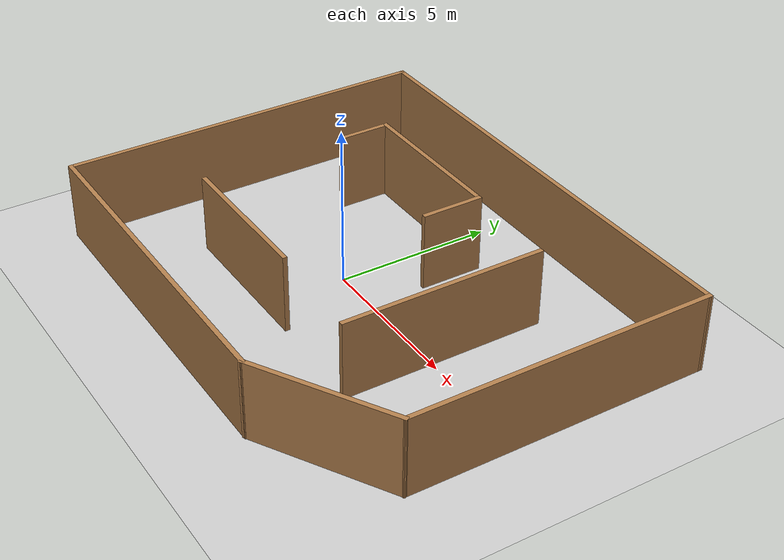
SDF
<sdf version="1.7">
 <world name="default">
  <light name="sun" type="directional">
   <pose>0 0 10 0 -0 0</pose>
   <diffuse>0.8 0.8 0.8 1</diffuse>
   <specular>0.2 0.2 0.2 1</specular>
   <attenuation>
    <range>1000</range>
    <constant>0.9</constant>
    <linear>0.01</linear>
    <quadratic>0.001</quadratic>
   </attenuation>
   <direction>-0.5 0.1 -0.9</direction>
   <spot><inner_angle>0</inner_angle><outer_angle>0</outer_angle><falloff>0</falloff></spot>
  </light>
  <model name="ground_plane">
   <static>1</static>
   <link name="link">
    <collision name="collision">
     <geometry><plane><normal>0 0 1</normal><size>100 100</size></plane></geometry>
     <surface>
      <contact><collide_bitmask>65535</collide_bitmask></contact>
      <friction><ode><mu>100</mu><mu2>50</mu2></ode></friction>
     </surface>
    </collision>
    <visual name="visual">
     <cast_shadows>0</cast_shadows>
     <geometry><plane><normal>0 0 1</normal><size>100 100</size></plane></geometry>
     <material>
      <script><uri>file://media/materials/scripts/gazebo.material</uri><name>Gazebo/Grey</name></script>
     </material>
    </visual>
   </link>
  </model>
  <gravity>0 0 -9.8</gravity>
  <magnetic_field>6e-06 2.3e-05 -4.2e-05</magnetic_field>
  <atmosphere type="adiabatic"/>
  <physics type="ode">
   <max_step_size>0.001</max_step_size>
   <real_time_factor>1</real_time_factor>
   <real_time_update_rate>1000</real_time_update_rate>
  </physics>
  <scene><ambient>0.4 0.4 0.4 1</ambient><background>0.7 0.7 0.7 1</background><shadows>1</shadows></scene>
  <spherical_coordinates>
   <surface_model>EARTH_WGS84</surface_model>
   <latitude_deg>0</latitude_deg>
   <longitude_deg>0</longitude_deg>
   <elevation>0</elevation>
   <heading_deg>0</heading_deg>
  </spherical_coordinates>
  <model name="simple_map">
   <pose>1.2124 0.1647 0 0 -0 0</pose>
   <link name="Wall_10">
    <collision name="Wall_10_Collision">
     <geometry><box><size>1.75 0.15 2.5</size></box></geometry>
     <pose>0 0 1.25 0 -0 0</pose>
    </collision>
    <visual name="Wall_10_Visual">
     <pose>0 0 1.25 0 -0 0</pose>
     <geometry><box><size>1.75 0.15 2.5</size></box></geometry>
     <material>
      <script><uri>file://media/materials/scripts/gazebo.material</uri><name>Gazebo/Wood</name></script>
      <ambient>0.921569 0.807843 0.615686 1</ambient>
     </material>
     <meta><layer>0</layer></meta>
    </visual>
    <pose>-4.77646 2.74651 0 0 -0 -1.5708</pose>
   </link>
   <link name="Wall_12">
    <collision name="Wall_12_Collision">
     <geometry><box><size>5 0.15 2.5</size></box></geometry>
     <pose>0 0 1.25 0 -0 0</pose>
    </collision>
    <visual name="Wall_12_Visual">
     <pose>0 0 1.25 0 -0 0</pose>
     <geometry><box><size>5 0.15 2.5</size></box></geometry>
     <material>
      <script><uri>file://media/materials/scripts/gazebo.material</uri><name>Gazebo/Wood</name></script>
      <ambient>0.435294 0.796078 0.67451 1</ambient>
     </material>
     <meta><layer>0</layer></meta>
    </visual>
    <pose>-2.38664 -2.78567 0 0 -0 0</pose>
   </link>
   <link name="Wall_14">
    <collision name="Wall_14_Collision">
     <geometry><box><size>6.5 0.15 2.5</size></box></geometry>
     <pose>0 0 1.25 0 -0 0</pose>
    </collision>
    <visual name="Wall_14_Visual">
     <pose>0 0 1.25 0 -0 0</pose>
     <geometry><box><size>6.5 0.15 2.5</size></box></geometry>
     <material>
      <script><uri>file://media/materials/scripts/gazebo.material</uri><name>Gazebo/Wood</name></script>
      <ambient>0.921569 0.807843 0.615686 1</ambient>
     </material>
     <meta><layer>0</layer></meta>
    </visual>
    <pose>3.49055 0.230791 0 0 -0 -1.5708</pose>
   </link>
   <link name="Wall_16">
    <collision name="Wall_16_Collision">
     <geometry><box><size>11.25 0.15 2.5</size></box></geometry>
     <pose>0 0 1.25 0 -0 0</pose>
    </collision>
    <visual name="Wall_16_Visual">
     <pose>0 0 1.25 0 -0 0</pose>
     <geometry><box><size>11.25 0.15 2.5</size></box></geometry>
     <material>
      <script><uri>file://media/materials/scripts/gazebo.material</uri><name>Gazebo/Wood</name></script>
      <ambient>0.996078 0.47451 0.0196078 1</ambient>
     </material>
     <meta><layer>0</layer></meta>
    </visual>
    <pose>-2.00558 -5.91134 0 0 -0 0</pose>
   </link>
   <link name="Wall_17">
    <collision name="Wall_17_Collision">
     <geometry><box><size>4.75 0.15 2.5</size></box></geometry>
     <pose>0 0 1.25 0 -0 0</pose>
    </collision>
    <visual name="Wall_17_Visual">
     <pose>0 0 1.25 0 -0 0</pose>
     <geometry><box><size>4.75 0.15 2.5</size></box></geometry>
     <material>
      <script><uri>file://media/materials/scripts/gazebo.material</uri><name>Gazebo/Wood</name></script>
      <ambient>0.996078 0.47451 0.0196078 1</ambient>
     </material>
     <meta><layer>0</layer></meta>
    </visual>
    <pose>5.53627 -4.76134 0 0 -0 0.523599</pose>
   </link>
   <link name="Wall_18">
    <collision name="Wall_18_Collision">
     <geometry><box><size>9.70001 0.15 2.5</size></box></geometry>
     <pose>0 0 1.25 0 -0 0</pose>
    </collision>
    <visual name="Wall_18_Visual">
     <pose>0 0 1.25 0 -0 0</pose>
     <geometry><box><size>9.70001 0.15 2.5</size></box></geometry>
     <material>
      <script><uri>file://media/materials/scripts/gazebo.material</uri><name>Gazebo/Wood</name></script>
      <ambient>0.996078 0.47451 0.0196078 1</ambient>
     </material>
     <meta><layer>0</layer></meta>
    </visual>
    <pose>7.53627 1.16366 0 0 -0 1.56909</pose>
   </link>
   <link name="Wall_2">
    <collision name="Wall_2_Collision">
     <geometry><box><size>12 0.15 2.5</size></box></geometry>
     <pose>0 0 1.25 0 -0 0</pose>
    </collision>
    <visual name="Wall_2_Visual">
     <pose>0 0 1.25 0 -0 0</pose>
     <geometry><box><size>12 0.15 2.5</size></box></geometry>
     <material>
      <script><uri>file://media/materials/scripts/gazebo.material</uri><name>Gazebo/Wood</name></script>
      <ambient>0.435294 0.796078 0.67451 1</ambient>
     </material>
     <meta><layer>0</layer></meta>
    </visual>
    <pose>-7.55558 0.013662 0 0 -0 -1.5708</pose>
   </link>
   <link name="Wall_5">
    <collision name="Wall_5_Collision">
     <geometry><box><size>15.25 0.15 2.5</size></box></geometry>
     <pose>0 0 1.25 0 -0 0</pose>
    </collision>
    <visual name="Wall_5_Visual">
     <pose>0 0 1.25 0 -0 0</pose>
     <geometry><box><size>15.25 0.15 2.5</size></box></geometry>
     <material>
      <script><uri>file://media/materials/scripts/gazebo.material</uri><name>Gazebo/Wood</name></script>
      <ambient>0.435294 0.796078 0.67451 1</ambient>
     </material>
     <meta><layer>0</layer></meta>
    </visual>
    <pose>-0.005584 5.93866 0 0 -0 3.14159</pose>
   </link>
   <link name="Wall_7">
    <collision name="Wall_7_Collision">
     <geometry><box><size>5.25 0.15 2.5</size></box></geometry>
     <pose>0 0 1.25 0 -0 0</pose>
    </collision>
    <visual name="Wall_7_Visual">
     <pose>0 0 1.25 0 -0 0</pose>
     <geometry><box><size>5.25 0.15 2.5</size></box></geometry>
     <material>
      <script><uri>file://media/materials/scripts/gazebo.material</uri><name>Gazebo/Wood</name></script>
      <ambient>0.921569 0.807843 0.615686 1</ambient>
     </material>
     <meta><layer>0</layer></meta>
    </visual>
    <pose>-2.22646 3.54651 0 0 -0 0</pose>
   </link>
   <link name="Wall_8">
    <collision name="Wall_8_Collision">
     <geometry><box><size>2 0.15 2.5</size></box></geometry>
     <pose>0 0 1.25 0 -0 0</pose>
    </collision>
    <visual name="Wall_8_Visual">
     <pose>0 0 1.25 0 -0 0</pose>
     <geometry><box><size>2 0.15 2.5</size></box></geometry>
     <material>
      <script><uri>file://media/materials/scripts/gazebo.material</uri><name>Gazebo/Wood</name></script>
      <ambient>0.921569 0.807843 0.615686 1</ambient>
     </material>
     <meta><layer>0</layer></meta>
    </visual>
    <pose>0.323539 2.62151 0 0 -0 -1.5708</pose>
   </link>
   <static>1</static>
  </model>
 </world>
</sdf>
